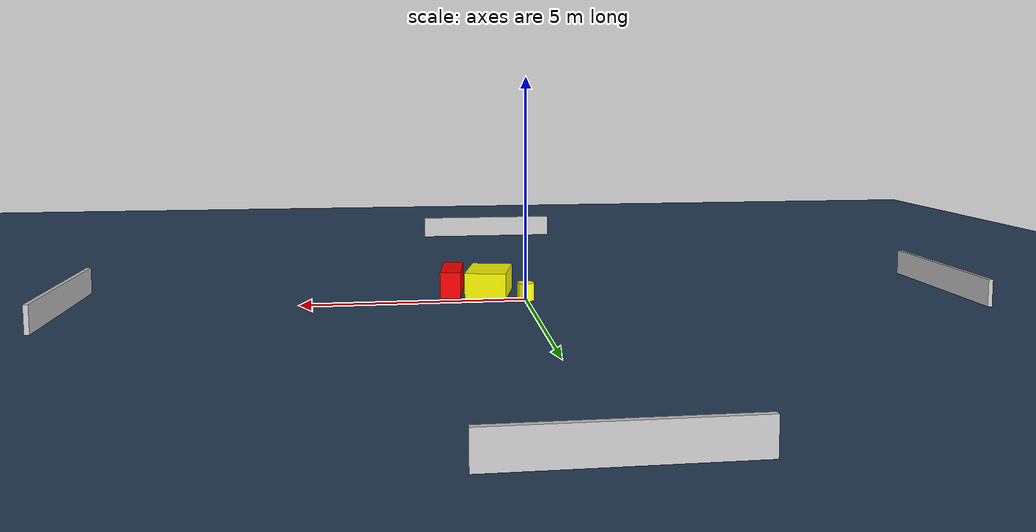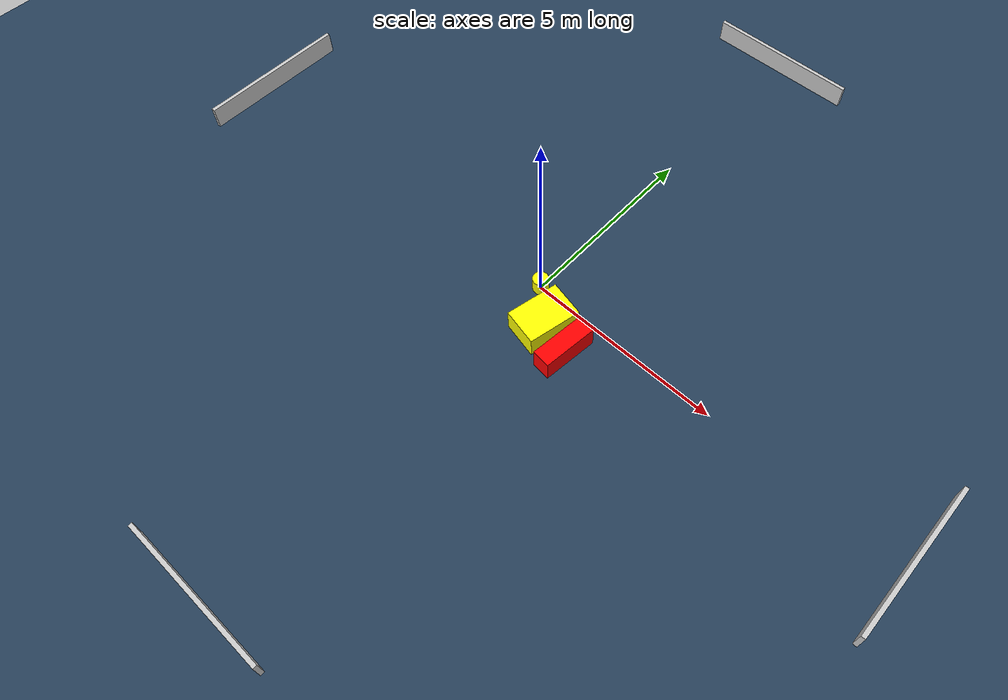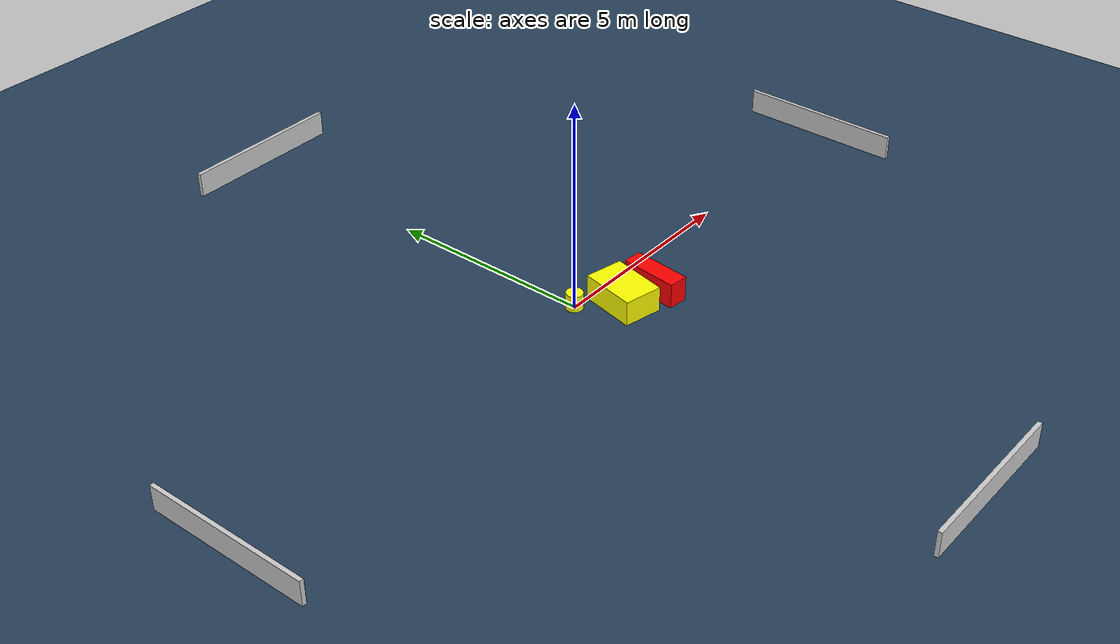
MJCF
<?xml version="1.0" ?>
<mujoco model="generated_environment">
  <option timestep="0.01" integrator="RK4" cone="elliptic"/>
  <default>
    <geom density="1"/>
  </default>
  <asset>
    <texture builtin="gradient" height="3072" name="skybox" rgb1="0.3 0.5 0.7" rgb2="0 0 0" type="skybox" width="512"/>
    <texture builtin="checker" height="300" name="groundplane" rgb1="0.2 0.3 0.4" rgb2="0.1 0.2 0.3" type="2d" width="300"/>
    <material name="groundplane" reflectance="0.2" texrepeat="5 5" texture="groundplane"/>
  </asset>
  <worldbody>
    <light dir="0 0 -1" directional="true" pos="0 0 1.5"/>
    <geom condim="3" friction="0.5 0.005 0.001" material="groundplane" name="floor" pos="0 0 0" size="0 0 0.05" type="plane"/>
    <body name="walls">
      <geom name="wall_1" condim="4" pos="-10.0 0.0 0.3" rgba="0.800000011920929 0.800000011920929 0.800000011920929 1.0" size="0.05 2.0 0.3" type="box"/>
      <geom name="wall_2" condim="4" pos="10.0 0.0 0.3" rgba="0.800000011920929 0.800000011920929 0.800000011920929 1.0" size="0.05 2.0 0.3" type="box"/>
      <geom name="wall_3" condim="4" pos="0.0 -10.0 0.3" rgba="0.800000011920929 0.800000011920929 0.800000011920929 1.0" size="2.0 0.05 0.3" type="box"/>
      <geom name="wall_4" condim="4" pos="0.0 10.0 0.3" rgba="0.800000011920929 0.800000011920929 0.800000011920929 1.0" size="2.0 0.05 0.3" type="box"/>
    </body>
    <body name="robot">
      <joint name="joint_x" type="slide" pos="0 0 0" axis="1 0 0"/>
      <joint name="joint_y" type="slide" pos="0 0 0" axis="0 1 0"/>
      <geom name="robot" type="cylinder" pos="0.0 0.0 0.2" size="0.2 0.2 0.0" mass="5.0" friction="1.0 0.005 0.0001" condim="4" rgba="1.0 1.0 0.0 1.0"/>
    </body>
    <body name="obstacle_1_movable">
      <geom name="obstacle_1_movable" condim="4" pos="0.7688397681593044 -0.7479665285949053 0.3" euler="0 0 77.71131933527644" friction="0.0 0.005 0.001" rgba="1.0 1.0 0.0 1.0" size="0.6743117383520849 0.46734212615980225 0.3" type="box" mass="0.1"/>
      <joint type="free"/>
    </body>
    <body name="obstacle_2_static">
      <geom name="obstacle_2_static" condim="4" pos="1.6090945411678088 -0.9880351367673279 0.3" euler="0 0 173.7482494303329" friction="0.0 0.005 0.001" rgba="1.0 0.0 0.0 1.0" size="0.23474655221157809 0.6969044612249806 0.3" type="box"/>
    </body>
  </worldbody>
  <actuator>
    <motor name="actuator_x" joint="joint_x" gear="1" ctrlrange="-1 1"/>
    <motor name="actuator_y" joint="joint_y" gear="1" ctrlrange="-1 1"/>
  </actuator>
</mujoco>
